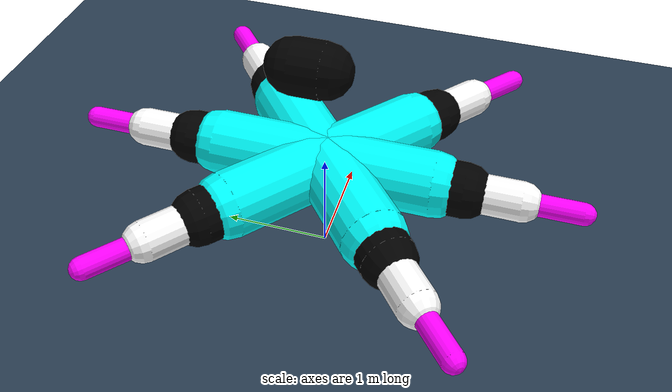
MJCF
<mujoco>
    <compiler inertiafromgeom="true" angle="degree"/>

    <default>
        <joint limited="true" damping="1" armature="0"/>
        <geom condim="1" material="matgeom"/>
        <position ctrlrange="-.4 .4" ctrllimited="true"/>
    </default>

    <option timestep="0.005" iterations="50" tolerance="1e-10" solver="Newton" jacobian="dense" cone="pyramidal"/>

    <size nconmax="50" njmax="200" nstack="10000"/>

    <visual>
        <map force="0.1" zfar="30"/>
        <rgba haze="0.15 0.25 0.35 1"/>
        <quality shadowsize="2048"/>
    </visual>

    <asset>
        <texture type="skybox" builtin="gradient" rgb1="0.3 0.5 0.7" rgb2="0 0 0" width="512" height="512"/>

        <texture name="texplane" type="2d" builtin="checker" rgb1=".2 .3 .4" rgb2=".1 0.15 0.2" width="512" height="512" mark="cross" markrgb=".8 .8 .8"/>

        <texture name="texgeom" type="cube" builtin="flat" mark="cross" width="127" height="1278"
            rgb1="0.8 0.6 0.4" rgb2="0.8 0.6 0.4" markrgb="1 1 1" random="0.01"/>

        <material name="matplane" reflectance="0.0003" texture="texplane" texrepeat="1 1" texuniform="true"/>

        <material name="matgeom" texture="texgeom" texuniform="true" rgba="0.8 0.6 .4 1"/>
    </asset>

    <asset>
        <mesh name="arrow" file="arrow.stl" scale="0.3 0.1 1.5"/>

        <texture name="texarrow" type="cube" builtin="flat" width="127" height="1278"
            rgb1="1 1 0" rgb2="1 1 0" markrgb="1 1 1" random="0.01"/>
        <material name="matarrow" reflectance="0.0003" texture="texarrow" texrepeat="1 1" texuniform="true"/>
    </asset>

    <worldbody>
        <geom name="floor" friction="1 1 1" pos="0 0 0" size="0 0 .25" type="plane" material="matplane" condim="3"/>

        <body pos="0 0 2">
            <joint name="arrow" limited="false" damping="10000" axis="0 0 -1" />

            <geom type="capsule" rgba="0 0 0 1" fromto="0 0 0 0 0.27 0" size="0.25 0.25" />
        </body>

        <body name="spider" pos="0 0 1">
            <camera name="track" mode="trackcom" pos="0 -6 6" euler="45 0 0"/>

            <freejoint name="root"/>
            <geom mass="3500" type="capsule" fromto="-.766 .6428 0 .766 -.6428 0"  size="0.3 0.3" rgba="0 250 250 1"/>
            <geom mass="3500" type="capsule" fromto=".766 .6428 0 -.766 -.6428 0"  size="0.3 0.3" rgba="0 250 250 1"/>
            <geom mass="3500" type="capsule" fromto="0 1 0 0 -1 0"  size="0.3 0.3" rgba="0 250 250 1"/>

            <body name="leg1" pos="0 1 0">
                <joint name="1"  type="hinge" pos="0 0 0" damping="900" axis="0 0 1" range="-90 90"   />
                <geom type="capsule" rgba="0 0 0 1" fromto="0 0 0 0 0.27 0"  size="0.25 0.25" />
                <body pos="0 0.27 0">
                    <joint name="7" type="hinge" pos="0 0 0" damping="900" axis="1 0 0" range="-90 0"    />
                    <geom friction="000 000 000" type="capsule" rgba="250 229 2 1" fromto="0 0 0 0 0.49 0"  size="0.18 0.18" />
                    <body pos="0 0.49 0">
                        <joint name="13" type="hinge" pos="0 0 0" damping="900" axis="1 0 0" range="-90 0"    />
                        <geom friction="000 0390 000"  type="capsule" rgba="250 0 80 1" fromto="0 0 0 0 0.52 0"  size=".1 .1" />
                    </body>

                </body>
            </body>

            <body name="leg4" pos="0 -1 0">
                <joint name="4" type="hinge" pos="0 0 0" axis="0 0 1" damping="900" range="-90 90"   />
                <geom type="capsule" rgba="0 0 0 1" fromto="0 0 0 0 -.27 0"  size="0.25 0.25" />
                <body pos="0 -.27 0">
                    <joint name="10" type="hinge" pos="0 0 0" axis="-1 0 0" damping="900" range="-90 0"   />
                    <geom friction="000 000 000" type="capsule" rgba="250 229 2 1" fromto="0 0 0 0 -.49 0"  size="0.18 0.18" />
                    <body pos="0 -.49 0">
                        <joint name="16" type="hinge" pos="0 0 0" axis="-1 0 0" damping="900" range="-90 0"   />
                        <geom friction="000 0390 000" type="capsule" rgba="250 0 80 1" fromto="0 0 0 0 -.52 0"  size=".1 .1" />
                    </body>

                </body>
            </body>

            <body name="leg2" pos="0.766 0.6428 0">
                <joint name="2" type="hinge" pos="0 0 0" axis="0 0 1" damping="900" range="-90 90"   />
                <geom type="capsule" rgba="0 0 0 1" fromto="0 0 0 0.204 0.174 0"  size="0.25 0.25" />
                <body pos=".204 .174 0">
                    <joint name="8" type="hinge" pos="0 0 0" axis=".5 -.65 0" damping="900" range="-90 0"   />
                    <geom friction="000 000 000" type="capsule" rgba="250 229 2 1" fromto="0 0 0 .38 .314 0"  size="0.18 0.18" />
                    <body pos=".38 .314 0">
                        <joint name="14" type="hinge" pos="0 0 0" axis=".5 -.65 0" damping="900" range="-90 0"   />
                        <geom friction="000 0390 000" type="capsule" rgba="250 0 80 1" fromto="0 0 0 .4 .34 0"  size=".1 .1" />
                    </body>

                </body>
            </body>

            <body name="leg6" pos="-.766 .6428 0">
                <joint name="6" type="hinge" pos="0 0 0" axis="0 0 1" damping="900" range="-90 90"   />
                <geom type="capsule" rgba="0 0 0 1" fromto="0 0 0 -.204 .174 0"  size="0.25 0.25" />
                <body pos="-.204 .174 0">
                    <joint name="12" type="hinge" pos="0 0 0" axis=".5 .65 0" damping="900" range="-90 0"   />
                    <geom friction="000 000 000" type="capsule" rgba="250 229 2 1" fromto="0 0 0 -.38 .314 0"  size="0.18 0.18" />
                    <body pos="-.38 .314 0">
                        <joint name="18" type="hinge" pos="0 0 0" axis=".5 .65 0" damping="900" range="-90 0"   />
                        <geom friction="000 0390 000" type="capsule" rgba="250 0 80 1" fromto="0 0 0 -.4 .34 0"  size=".1 .1" />
                    </body>

                </body>
            </body>

            <body name="leg3" pos=".766 -.6428 0">
                <joint name="3" type="hinge" pos="0 0 0" axis="0 0 1" damping="900" range="-90 90"   />
                <geom type="capsule" rgba="0 0 0 1" fromto="0 0 0 .204 -.174 0"  size="0.25 0.25" />
                <body pos=".204 -.174 0">
                    <joint name="9" type="hinge" pos="0 0 0" axis="-.5 -.65 0" damping="900" range="-90 0"   />
                    <geom friction="000 000 000" type="capsule" rgba="250 229 2 1" fromto="0 0 0 .38 -.314 0"  size="0.18 0.18" />
                    <body pos=".38 -.314 0">
                        <joint name="15" type="hinge" pos="0 0 0" axis="-.5 -.65 0" damping="900" range="-90 0"   />
                        <geom friction="000 0390 000" type="capsule" rgba="250 0 80 1" fromto="0 0 0 .4 -.34 0"  size=".1 .1" />
                    </body>

                </body>
            </body>

            <body name="leg5" pos="-.766 -.6428 0">
                <joint name="5" type="hinge" pos="0 0 0" axis="0 0 1" range="-90 90" damping="900" />
                <geom type="capsule" rgba="0 0 0 1" fromto="0 0 0 -.204 -.174 0"  size="0.25 0.25" />
                <body pos="-.204 -.174 0">
                    <joint name="11" type="hinge" pos="0 0 0" axis="-.5 .65 0"  damping="900" range="-90 0"   />
                    <geom friction="000 000 000" type="capsule" rgba="250 229 2 1" fromto="0 0 0 -.38 -.314 0"  size="0.18 0.18" />
                    <body pos="-.38 -.314 0">
                        <joint name="17" type="hinge" pos="0 0 0" axis="-.5 .65 0" damping="900" range="-90 0"   />
                        <geom friction="000 0390 000" type="capsule" rgba="250 0 80 1" fromto="0 0 0 -.4 -.34 0"  size=".1 .1" />
                    </body>

                </body>
            </body>

        </body>

    </worldbody>
    <actuator>
        <position ctrllimited="true" ctrlrange="-180 180" gear="55" kp="50" name="arrow" joint="arrow"/>

        <position ctrllimited="true" ctrlrange="-90 90" gear="55" kp="5" name="g1" joint="1"/>
        <position ctrllimited="true" ctrlrange="-90 90" gear="55" kp="5" name="g2" joint="2" />
        <position ctrllimited="true" ctrlrange="-90 90" gear="55" kp="5" name="g3" joint="3" />
        <position ctrllimited="true" ctrlrange="-90 90" gear="55" kp="5" name="g4" joint="4" />
        <position ctrllimited="true" ctrlrange="-90 90" gear="55" kp="5" name="g5" joint="5" />
        <position ctrllimited="true" ctrlrange="-90 90" gear="55" kp="5" name="g6" joint="6" />

        <position ctrllimited="true" ctrlrange="-90 0" gear="55" kp="5" name="g_g1" joint="7" />
        <position ctrllimited="true" ctrlrange="-90 0" gear="55" kp="5" name="g_g2" joint="8" />
        <position ctrllimited="true" ctrlrange="-90 0" gear="55" kp="5" name="g_g3" joint="9" />
        <position ctrllimited="true" ctrlrange="-90 0" gear="55" kp="5" name="g_g4" joint="10" />
        <position ctrllimited="true" ctrlrange="-90 0" gear="55" kp="5" name="g_g5" joint="11" />
        <position ctrllimited="true" ctrlrange="-90 0" gear="55" kp="5" name="g_g6" joint="12" />

        <position ctrllimited="true" ctrlrange="-90 0" gear="55" kp="5" name="g_g_g1" joint="13" />
        <position ctrllimited="true" ctrlrange="-90 0" gear="55" kp="5" name="g_g_g2" joint="14" />
        <position ctrllimited="true" ctrlrange="-90 0" gear="55" kp="5" name="g_g_g3" joint="15" />
        <position ctrllimited="true" ctrlrange="-90 0" gear="55" kp="5" name="g_g_g4" joint="16" />
        <position ctrllimited="true" ctrlrange="-90 0" gear="55" kp="5" name="g_g_g5" joint="17" />
        <position ctrllimited="true" ctrlrange="-90 0" gear="55" kp="5" name="g_g_g6" joint="18" />

    </actuator>
</mujoco>
